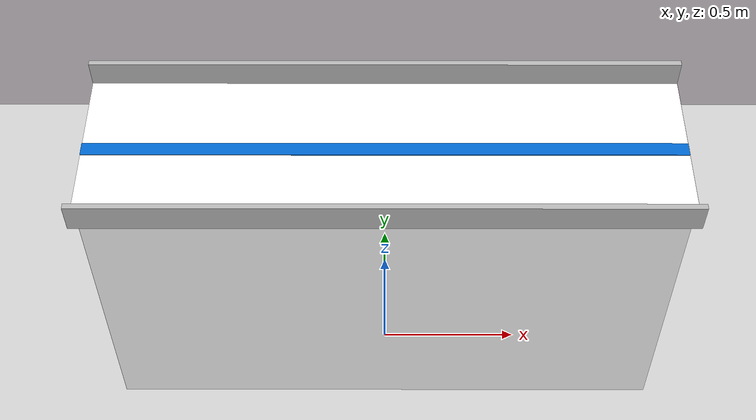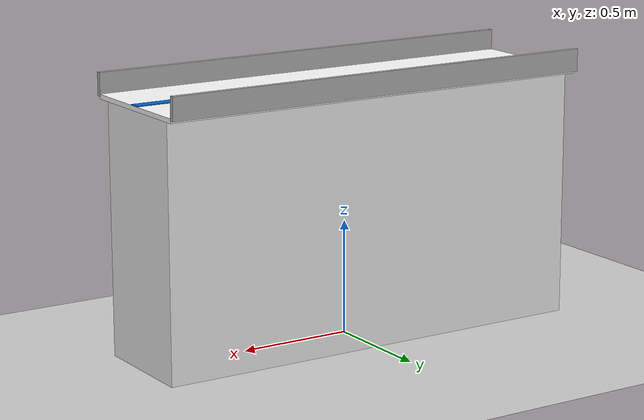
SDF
<sdf version="1.8">
 <world name="ultimate_clean">
  <physics name="1ms" type="ignored"><max_step_size>0.001</max_step_size></physics>
  <plugin filename="ignition-gazebo-physics-system" name="ignition::gazebo::systems::Physics"/>
  <plugin filename="ignition-gazebo-scene-broadcaster-system" name="ignition::gazebo::systems::SceneBroadcaster"/>
  <plugin filename="ignition-gazebo-user-commands-system" name="ignition::gazebo::systems::UserCommands"/>
  <plugin filename="ignition-gazebo-sensors-system" name="ignition::gazebo::systems::Sensors">
   <render_engine>ogre2</render_engine>
  </plugin>
  <light type="directional" name="sun">
   <pose>0 0 10 0 0 0</pose>
   <diffuse>1 1 1 1</diffuse>
   <direction>-0.5 0.1 -0.9</direction>
  </light>
  <model name="ground">
   <static>true</static>
   <link name="l">
    <visual name="v">
     <geometry><plane><normal>0 0 1</normal></plane></geometry>
     <material><ambient>0.8 0.8 0.8 1</ambient></material>
    </visual>
   </link>
  </model>
  <include>
   <uri>file:///home/lequocthinh/Desktop/pythonCode/AI_Waiver/robot_ws/src/ai_waiter_ros/models/delivery_track</uri>
   <name>t1</name>
   <pose>0 0 1.1 0 0 0</pose>
  </include>
 </world>
</sdf>

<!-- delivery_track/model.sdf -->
<sdf version="1.8">
  <model name="delivery_track">
    <static>true</static>
    <link name="link">
      <!-- Main Track Countertop (Pure White) -->
      <visual name="floor">
        <geometry><box><size>2.0 0.6 0.02</size></box></geometry>
        <material>
          <ambient>1 1 1 1</ambient>
          <diffuse>1 1 1 1</diffuse>
          <specular>0.8 0.8 0.8 1</specular>
        </material>
      </visual>
      <collision name="floor_c">
        <geometry><box><size>2.0 0.6 0.02</size></box></geometry>
      </collision>

      <!-- SOLID WHITE PEDESTAL (To ground) - Visual only to avoid ODE crashes -->
      <visual name="pedestal">
        <pose>0 0 -0.55 0 0 0</pose>
        <geometry><box><size>1.98 0.5 1.1</size></box></geometry>
        <material>
          <ambient>0.95 0.95 0.95 1</ambient>
          <diffuse>0.95 0.95 0.95 1</diffuse>
        </material>
      </visual>

      <!-- Right Silver Rail (Low Height) -->
      <visual name="rail_right">
        <pose>0 -0.31 0.05 0 0 0</pose>
        <geometry><box><size>2.0 0.02 0.1</size></box></geometry>
        <material>
          <ambient>0.7 0.7 0.7 1</ambient>
          <diffuse>0.7 0.7 0.7 1</diffuse>
          <specular>1 1 1 1</specular>
        </material>
      </visual>

      <!-- Left Silver Rail (Low Height) -->
      <visual name="rail_left">
        <pose>0 0.31 0.05 0 0 0</pose>
        <geometry><box><size>2.0 0.02 0.1</size></box></geometry>
        <material>
          <ambient>0.7 0.7 0.7 1</ambient>
          <diffuse>0.7 0.7 0.7 1</diffuse>
          <specular>1 1 1 1</specular>
        </material>
      </visual>

      <!-- Blue Tech Accent Strip -->
      <visual name="accent">
        <pose>0 0 0.011 0 0 0</pose>
        <geometry><box><size>2.0 0.05 0.005</size></box></geometry>
        <material>
          <ambient>0 0.4 0.8 1</ambient>
          <diffuse>0 0.4 0.8 1</diffuse>
          <emissive>0 0.2 0.4 1</emissive>
        </material>
      </visual>
    </link>
  </model>
</sdf>
